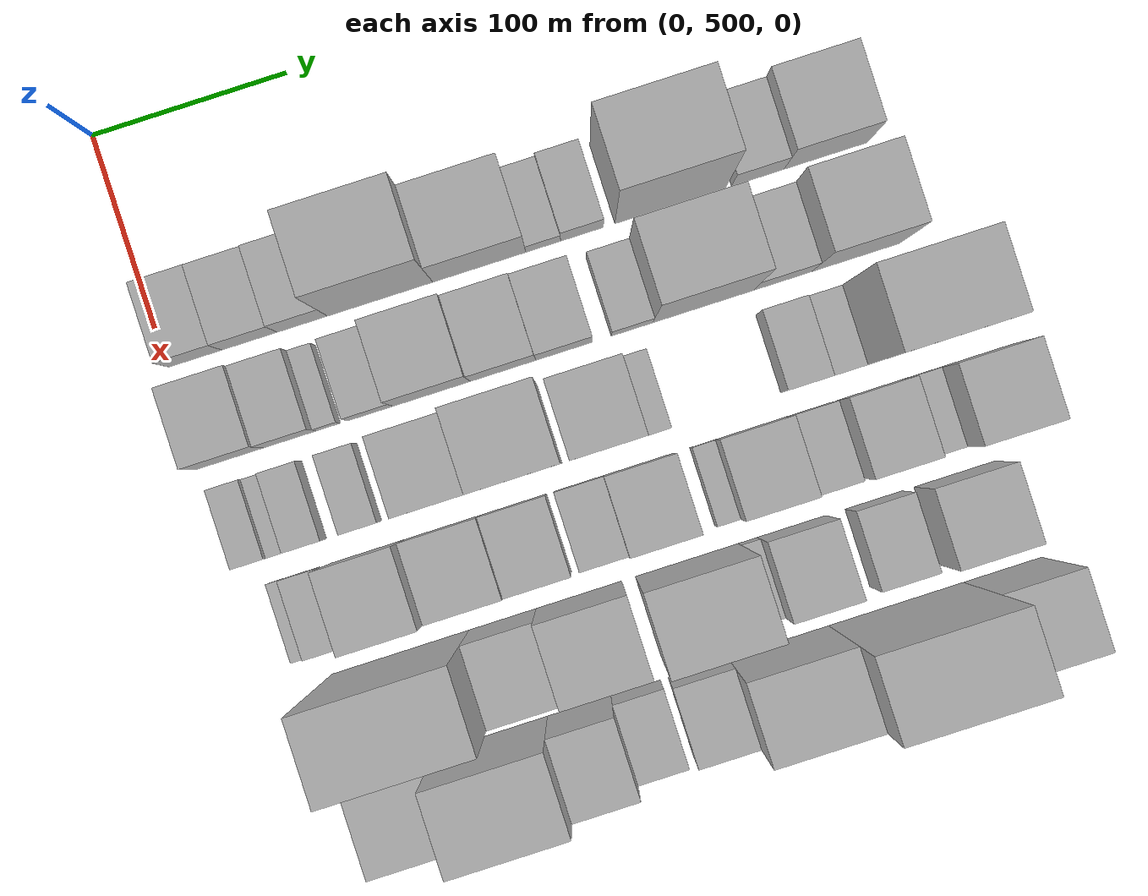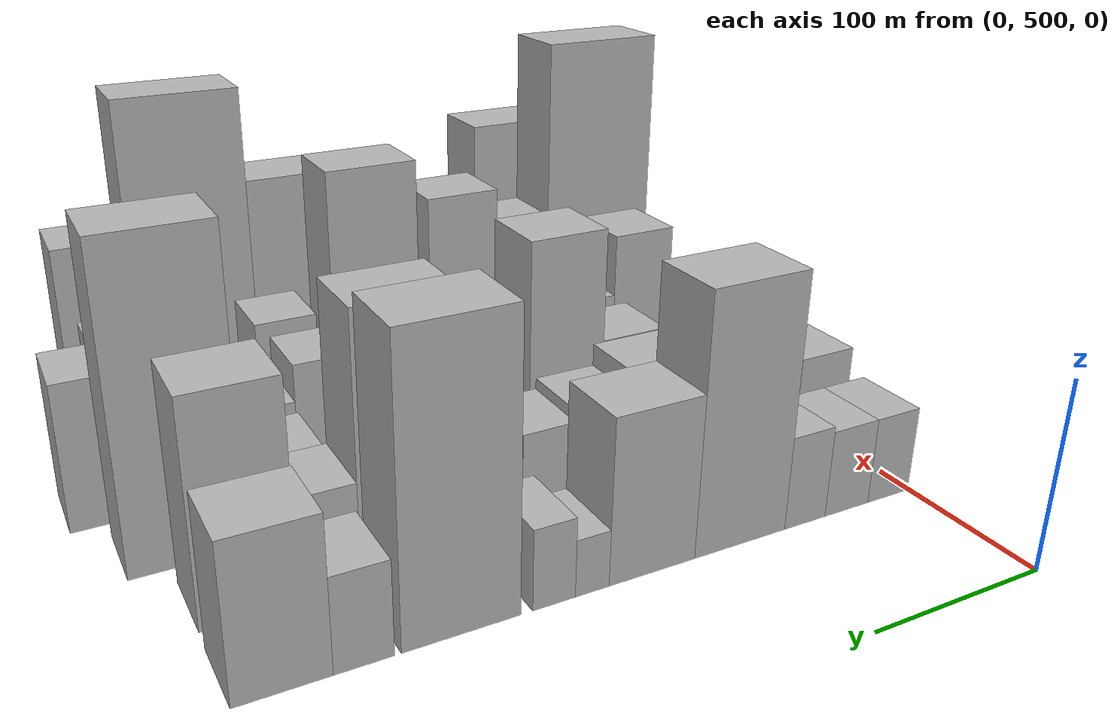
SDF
<sdf version="1.6">
 <world name="default">
  <model name="building_43">
   <static>1</static>
   <pose>100.0000 514.7516 0 0.000000 0.000000 0.000000</pose>
   <link name="link">
    <pose>0 0 24.00 0 0 0</pose>
    <collision name="collision"><geometry><box><size>40.0000 27.4832 48.0000</size></box></geometry></collision>
    <visual name="visual">
     <cast_shadows>0</cast_shadows>
     <geometry><box><size>40.0000 27.4832 48.0000</size></box></geometry>
     <material>
      <script>
       <uri>model://HANNAS_wall/materials/scripts</uri>
       <uri>model://HANNAS_wall/materials/textures</uri>
       <name>vrc/HANNAS_wall</name>
      </script>
     </material>
    </visual>
   </link>
  </model>
  <model name="building_44">
   <static>1</static>
   <pose>100.0000 542.7518 0 0.000000 0.000000 0.000000</pose>
   <link name="link">
    <pose>0 0 24.00 0 0 0</pose>
    <collision name="collision"><geometry><box><size>40.0000 28.5172 48.0000</size></box></geometry></collision>
    <visual name="visual">
     <cast_shadows>0</cast_shadows>
     <geometry><box><size>40.0000 28.5172 48.0000</size></box></geometry>
     <material>
      <script>
       <uri>model://HANNAS_wall/materials/scripts</uri>
       <uri>model://HANNAS_wall/materials/textures</uri>
       <name>vrc/HANNAS_wall</name>
      </script>
     </material>
    </visual>
   </link>
  </model>
  <model name="building_45">
   <static>1</static>
   <pose>100.0000 569.9251 0 0.000000 0.000000 0.000000</pose>
   <link name="link">
    <pose>0 0 25.50 0 0 0</pose>
    <collision name="collision"><geometry><box><size>40.0000 25.8294 51.0000</size></box></geometry></collision>
    <visual name="visual">
     <cast_shadows>0</cast_shadows>
     <geometry><box><size>40.0000 25.8294 51.0000</size></box></geometry>
     <material>
      <script>
       <uri>model://HANNAS_wall/materials/scripts</uri>
       <uri>model://HANNAS_wall/materials/textures</uri>
       <name>vrc/HANNAS_wall</name>
      </script>
     </material>
    </visual>
   </link>
  </model>
  <model name="building_46">
   <static>1</static>
   <pose>100.0000 610.0056 0 0.000000 0.000000 0.000000</pose>
   <link name="link">
    <pose>0 0 69.00 0 0 0</pose>
    <collision name="collision"><geometry><box><size>40.0000 54.3316 138.0000</size></box></geometry></collision>
    <visual name="visual">
     <cast_shadows>0</cast_shadows>
     <geometry><box><size>40.0000 54.3316 138.0000</size></box></geometry>
     <material>
      <script>
       <uri>model://HANNAS_wall/materials/scripts</uri>
       <uri>model://HANNAS_wall/materials/textures</uri>
       <name>vrc/HANNAS_wall</name>
      </script>
     </material>
    </visual>
   </link>
  </model>
  <model name="building_47">
   <static>1</static>
   <pose>100.0000 661.1012 0 0.000000 0.000000 0.000000</pose>
   <link name="link">
    <pose>0 0 43.50 0 0 0</pose>
    <collision name="collision"><geometry><box><size>40.0000 47.8596 87.0000</size></box></geometry></collision>
    <visual name="visual">
     <cast_shadows>0</cast_shadows>
     <geometry><box><size>40.0000 47.8596 87.0000</size></box></geometry>
     <material>
      <script>
       <uri>model://HANNAS_wall/materials/scripts</uri>
       <uri>model://HANNAS_wall/materials/textures</uri>
       <name>vrc/HANNAS_wall</name>
      </script>
     </material>
    </visual>
   </link>
  </model>
  <model name="building_48">
   <static>1</static>
   <pose>100.0000 693.9818 0 0.000000 0.000000 0.000000</pose>
   <link name="link">
    <pose>0 0 15.00 0 0 0</pose>
    <collision name="collision"><geometry><box><size>40.0000 17.9016 30.0000</size></box></geometry></collision>
    <visual name="visual">
     <cast_shadows>0</cast_shadows>
     <geometry><box><size>40.0000 17.9016 30.0000</size></box></geometry>
     <material>
      <script>
       <uri>model://HANNAS_wall/materials/scripts</uri>
       <uri>model://HANNAS_wall/materials/textures</uri>
       <name>vrc/HANNAS_wall</name>
      </script>
     </material>
    </visual>
   </link>
  </model>
  <model name="building_49">
   <static>1</static>
   <pose>100.0000 713.9070 0 0.000000 0.000000 0.000000</pose>
   <link name="link">
    <pose>0 0 21.00 0 0 0</pose>
    <collision name="collision"><geometry><box><size>40.0000 21.9488 42.0000</size></box></geometry></collision>
    <visual name="visual">
     <cast_shadows>0</cast_shadows>
     <geometry><box><size>40.0000 21.9488 42.0000</size></box></geometry>
     <material>
      <script>
       <uri>model://HANNAS_wall/materials/scripts</uri>
       <uri>model://HANNAS_wall/materials/textures</uri>
       <name>vrc/HANNAS_wall</name>
      </script>
     </material>
    </visual>
   </link>
  </model>
  <model name="building_50">
   <static>1</static>
   <pose>100.0000 759.4302 0 0.000000 0.000000 0.000000</pose>
   <link name="link">
    <pose>0 0 75.00 0 0 0</pose>
    <collision name="collision"><geometry><box><size>40.0000 57.0977 150.0000</size></box></geometry></collision>
    <visual name="visual">
     <cast_shadows>0</cast_shadows>
     <geometry><box><size>40.0000 57.0977 150.0000</size></box></geometry>
     <material>
      <script>
       <uri>model://HANNAS_wall/materials/scripts</uri>
       <uri>model://HANNAS_wall/materials/textures</uri>
       <name>vrc/HANNAS_wall</name>
      </script>
     </material>
    </visual>
   </link>
  </model>
  <model name="building_51">
   <static>1</static>
   <pose>100.0000 804.5569 0 0.000000 0.000000 0.000000</pose>
   <link name="link">
    <pose>0 0 24.00 0 0 0</pose>
    <collision name="collision"><geometry><box><size>40.0000 27.1556 48.0000</size></box></geometry></collision>
    <visual name="visual">
     <cast_shadows>0</cast_shadows>
     <geometry><box><size>40.0000 27.1556 48.0000</size></box></geometry>
     <material>
      <script>
       <uri>model://HANNAS_wall/materials/scripts</uri>
       <uri>model://HANNAS_wall/materials/textures</uri>
       <name>vrc/HANNAS_wall</name>
      </script>
     </material>
    </visual>
   </link>
  </model>
  <model name="building_52">
   <static>1</static>
   <pose>100.0000 839.6594 0 0.000000 0.000000 0.000000</pose>
   <link name="link">
    <pose>0 0 39.00 0 0 0</pose>
    <collision name="collision"><geometry><box><size>40.0000 43.0494 78.0000</size></box></geometry></collision>
    <visual name="visual">
     <cast_shadows>0</cast_shadows>
     <geometry><box><size>40.0000 43.0494 78.0000</size></box></geometry>
     <material>
      <script>
       <uri>model://HANNAS_wall/materials/scripts</uri>
       <uri>model://HANNAS_wall/materials/textures</uri>
       <name>vrc/HANNAS_wall</name>
      </script>
     </material>
    </visual>
   </link>
  </model>
  <model name="building_96">
   <static>1</static>
   <pose>152.0000 516.3863 0 0.000000 0.000000 0.000000</pose>
   <link name="link">
    <pose>0 0 30.00 0 0 0</pose>
    <collision name="collision"><geometry><box><size>40.0000 34.7319 60.0000</size></box></geometry></collision>
    <visual name="visual">
     <cast_shadows>0</cast_shadows>
     <geometry><box><size>40.0000 34.7319 60.0000</size></box></geometry>
     <material>
      <script>
       <uri>model://HANNAS_wall/materials/scripts</uri>
       <uri>model://HANNAS_wall/materials/textures</uri>
       <name>vrc/HANNAS_wall</name>
      </script>
     </material>
    </visual>
   </link>
  </model>
  <model name="building_97">
   <static>1</static>
   <pose>152.0000 547.3346 0 0.000000 0.000000 0.000000</pose>
   <link name="link">
    <pose>0 0 25.50 0 0 0</pose>
    <collision name="collision"><geometry><box><size>40.0000 27.1647 51.0000</size></box></geometry></collision>
    <visual name="visual">
     <cast_shadows>0</cast_shadows>
     <geometry><box><size>40.0000 27.1647 51.0000</size></box></geometry>
     <material>
      <script>
       <uri>model://HANNAS_wall/materials/scripts</uri>
       <uri>model://HANNAS_wall/materials/textures</uri>
       <name>vrc/HANNAS_wall</name>
      </script>
     </material>
    </visual>
   </link>
  </model>
  <model name="building_98">
   <static>1</static>
   <pose>152.0000 566.8733 0 0.000000 0.000000 0.000000</pose>
   <link name="link">
    <pose>0 0 13.50 0 0 0</pose>
    <collision name="collision"><geometry><box><size>40.0000 11.9128 27.0000</size></box></geometry></collision>
    <visual name="visual">
     <cast_shadows>0</cast_shadows>
     <geometry><box><size>40.0000 11.9128 27.0000</size></box></geometry>
     <material>
      <script>
       <uri>model://HANNAS_wall/materials/scripts</uri>
       <uri>model://HANNAS_wall/materials/textures</uri>
       <name>vrc/HANNAS_wall</name>
      </script>
     </material>
    </visual>
   </link>
  </model>
  <model name="building_99">
   <static>1</static>
   <pose>152.0000 588.4325 0 0.000000 0.000000 0.000000</pose>
   <link name="link">
    <pose>0 0 19.50 0 0 0</pose>
    <collision name="collision"><geometry><box><size>40.0000 23.2056 39.0000</size></box></geometry></collision>
    <visual name="visual">
     <cast_shadows>0</cast_shadows>
     <geometry><box><size>40.0000 23.2056 39.0000</size></box></geometry>
     <material>
      <script>
       <uri>model://HANNAS_wall/materials/scripts</uri>
       <uri>model://HANNAS_wall/materials/textures</uri>
       <name>vrc/HANNAS_wall</name>
      </script>
     </material>
    </visual>
   </link>
  </model>
  <model name="building_100">
   <static>1</static>
   <pose>152.0000 619.8724 0 0.000000 0.000000 0.000000</pose>
   <link name="link">
    <pose>0 0 37.50 0 0 0</pose>
    <collision name="collision"><geometry><box><size>40.0000 39.6742 75.0000</size></box></geometry></collision>
    <visual name="visual">
     <cast_shadows>0</cast_shadows>
     <geometry><box><size>40.0000 39.6742 75.0000</size></box></geometry>
     <material>
      <script>
       <uri>model://HANNAS_wall/materials/scripts</uri>
       <uri>model://HANNAS_wall/materials/textures</uri>
       <name>vrc/HANNAS_wall</name>
      </script>
     </material>
    </visual>
   </link>
  </model>
  <model name="building_101">
   <static>1</static>
   <pose>152.0000 656.6101 0 0.000000 0.000000 0.000000</pose>
   <link name="link">
    <pose>0 0 31.50 0 0 0</pose>
    <collision name="collision"><geometry><box><size>40.0000 33.8011 63.0000</size></box></geometry></collision>
    <visual name="visual">
     <cast_shadows>0</cast_shadows>
     <geometry><box><size>40.0000 33.8011 63.0000</size></box></geometry>
     <material>
      <script>
       <uri>model://HANNAS_wall/materials/scripts</uri>
       <uri>model://HANNAS_wall/materials/textures</uri>
       <name>vrc/HANNAS_wall</name>
      </script>
     </material>
    </visual>
   </link>
  </model>
  <model name="building_102">
   <static>1</static>
   <pose>152.0000 687.8854 0 0.000000 0.000000 0.000000</pose>
   <link name="link">
    <pose>0 0 28.50 0 0 0</pose>
    <collision name="collision"><geometry><box><size>40.0000 28.7497 57.0000</size></box></geometry></collision>
    <visual name="visual">
     <cast_shadows>0</cast_shadows>
     <geometry><box><size>40.0000 28.7497 57.0000</size></box></geometry>
     <material>
      <script>
       <uri>model://HANNAS_wall/materials/scripts</uri>
       <uri>model://HANNAS_wall/materials/textures</uri>
       <name>vrc/HANNAS_wall</name>
      </script>
     </material>
    </visual>
   </link>
  </model>
  <model name="building_103">
   <static>1</static>
   <pose>152.0000 722.9533 0 0.000000 0.000000 0.000000</pose>
   <link name="link">
    <pose>0 0 19.50 0 0 0</pose>
    <collision name="collision"><geometry><box><size>40.0000 21.3862 39.0000</size></box></geometry></collision>
    <visual name="visual">
     <cast_shadows>0</cast_shadows>
     <geometry><box><size>40.0000 21.3862 39.0000</size></box></geometry>
     <material>
      <script>
       <uri>model://HANNAS_wall/materials/scripts</uri>
       <uri>model://HANNAS_wall/materials/textures</uri>
       <name>vrc/HANNAS_wall</name>
      </script>
     </material>
    </visual>
   </link>
  </model>
  <model name="building_104">
   <static>1</static>
   <pose>152.0000 759.7269 0 0.000000 0.000000 0.000000</pose>
   <link name="link">
    <pose>0 0 69.00 0 0 0</pose>
    <collision name="collision"><geometry><box><size>40.0000 52.1610 138.0000</size></box></geometry></collision>
    <visual name="visual">
     <cast_shadows>0</cast_shadows>
     <geometry><box><size>40.0000 52.1610 138.0000</size></box></geometry>
     <material>
      <script>
       <uri>model://HANNAS_wall/materials/scripts</uri>
       <uri>model://HANNAS_wall/materials/textures</uri>
       <name>vrc/HANNAS_wall</name>
      </script>
     </material>
    </visual>
   </link>
  </model>
  <model name="building_105">
   <static>1</static>
   <pose>152.0000 800.6943 0 0.000000 0.000000 0.000000</pose>
   <link name="link">
    <pose>0 0 27.00 0 0 0</pose>
    <collision name="collision"><geometry><box><size>40.0000 29.7737 54.0000</size></box></geometry></collision>
    <visual name="visual">
     <cast_shadows>0</cast_shadows>
     <geometry><box><size>40.0000 29.7737 54.0000</size></box></geometry>
     <material>
      <script>
       <uri>model://HANNAS_wall/materials/scripts</uri>
       <uri>model://HANNAS_wall/materials/textures</uri>
       <name>vrc/HANNAS_wall</name>
      </script>
     </material>
    </visual>
   </link>
  </model>
  <model name="building_106">
   <static>1</static>
   <pose>152.0000 838.1845 0 0.000000 0.000000 0.000000</pose>
   <link name="link">
    <pose>0 0 57.00 0 0 0</pose>
    <collision name="collision"><geometry><box><size>40.0000 45.2067 114.0000</size></box></geometry></collision>
    <visual name="visual">
     <cast_shadows>0</cast_shadows>
     <geometry><box><size>40.0000 45.2067 114.0000</size></box></geometry>
     <material>
      <script>
       <uri>model://HANNAS_wall/materials/scripts</uri>
       <uri>model://HANNAS_wall/materials/textures</uri>
       <name>vrc/HANNAS_wall</name>
      </script>
     </material>
    </visual>
   </link>
  </model>
  <model name="building_148">
   <static>1</static>
   <pose>204.0000 511.6784 0 0.000000 0.000000 0.000000</pose>
   <link name="link">
    <pose>0 0 15.00 0 0 0</pose>
    <collision name="collision"><geometry><box><size>40.0000 16.7962 30.0000</size></box></geometry></collision>
    <visual name="visual">
     <cast_shadows>0</cast_shadows>
     <geometry><box><size>40.0000 16.7962 30.0000</size></box></geometry>
     <material>
      <script>
       <uri>model://HANNAS_wall/materials/scripts</uri>
       <uri>model://HANNAS_wall/materials/textures</uri>
       <name>vrc/HANNAS_wall</name>
      </script>
     </material>
    </visual>
   </link>
  </model>
  <model name="building_149">
   <static>1</static>
   <pose>204.0000 524.7945 0 0.000000 0.000000 0.000000</pose>
   <link name="link">
    <pose>0 0 10.50 0 0 0</pose>
    <collision name="collision"><geometry><box><size>40.0000 9.4360 21.0000</size></box></geometry></collision>
    <visual name="visual">
     <cast_shadows>0</cast_shadows>
     <geometry><box><size>40.0000 9.4360 21.0000</size></box></geometry>
     <material>
      <script>
       <uri>model://HANNAS_wall/materials/scripts</uri>
       <uri>model://HANNAS_wall/materials/textures</uri>
       <name>vrc/HANNAS_wall</name>
      </script>
     </material>
    </visual>
   </link>
  </model>
  <model name="building_150">
   <static>1</static>
   <pose>204.0000 539.2308 0 0.000000 0.000000 0.000000</pose>
   <link name="link">
    <pose>0 0 16.50 0 0 0</pose>
    <collision name="collision"><geometry><box><size>40.0000 19.4367 33.0000</size></box></geometry></collision>
    <visual name="visual">
     <cast_shadows>0</cast_shadows>
     <geometry><box><size>40.0000 19.4367 33.0000</size></box></geometry>
     <material>
      <script>
       <uri>model://HANNAS_wall/materials/scripts</uri>
       <uri>model://HANNAS_wall/materials/textures</uri>
       <name>vrc/HANNAS_wall</name>
      </script>
     </material>
    </visual>
   </link>
  </model>
  <model name="building_151">
   <static>1</static>
   <pose>204.0000 567.6677 0 0.000000 0.000000 0.000000</pose>
   <link name="link">
    <pose>0 0 16.50 0 0 0</pose>
    <collision name="collision"><geometry><box><size>40.0000 19.4371 33.0000</size></box></geometry></collision>
    <visual name="visual">
     <cast_shadows>0</cast_shadows>
     <geometry><box><size>40.0000 19.4371 33.0000</size></box></geometry>
     <material>
      <script>
       <uri>model://HANNAS_wall/materials/scripts</uri>
       <uri>model://HANNAS_wall/materials/textures</uri>
       <name>vrc/HANNAS_wall</name>
      </script>
     </material>
    </visual>
   </link>
  </model>
  <model name="building_152">
   <static>1</static>
   <pose>204.0000 606.0776 0 0.000000 0.000000 0.000000</pose>
   <link name="link">
    <pose>0 0 34.50 0 0 0</pose>
    <collision name="collision"><geometry><box><size>40.0000 39.3828 69.0000</size></box></geometry></collision>
    <visual name="visual">
     <cast_shadows>0</cast_shadows>
     <geometry><box><size>40.0000 39.3828 69.0000</size></box></geometry>
     <material>
      <script>
       <uri>model://HANNAS_wall/materials/scripts</uri>
       <uri>model://HANNAS_wall/materials/textures</uri>
       <name>vrc/HANNAS_wall</name>
      </script>
     </material>
    </visual>
   </link>
  </model>
  <model name="building_153">
   <static>1</static>
   <pose>204.0000 648.0403 0 0.000000 0.000000 0.000000</pose>
   <link name="link">
    <pose>0 0 66.00 0 0 0</pose>
    <collision name="collision"><geometry><box><size>40.0000 44.5425 132.0000</size></box></geometry></collision>
    <visual name="visual">
     <cast_shadows>0</cast_shadows>
     <geometry><box><size>40.0000 44.5425 132.0000</size></box></geometry>
     <material>
      <script>
       <uri>model://HANNAS_wall/materials/scripts</uri>
       <uri>model://HANNAS_wall/materials/textures</uri>
       <name>vrc/HANNAS_wall</name>
      </script>
     </material>
    </visual>
   </link>
  </model>
  <model name="building_154">
   <static>1</static>
   <pose>204.0000 693.6566 0 0.000000 0.000000 0.000000</pose>
   <link name="link">
    <pose>0 0 33.00 0 0 0</pose>
    <collision name="collision"><geometry><box><size>40.0000 38.6901 66.0000</size></box></geometry></collision>
    <visual name="visual">
     <cast_shadows>0</cast_shadows>
     <geometry><box><size>40.0000 38.6901 66.0000</size></box></geometry>
     <material>
      <script>
       <uri>model://HANNAS_wall/materials/scripts</uri>
       <uri>model://HANNAS_wall/materials/textures</uri>
       <name>vrc/HANNAS_wall</name>
      </script>
     </material>
    </visual>
   </link>
  </model>
  <model name="building_155">
   <static>1</static>
   <pose>204.0000 719.4248 0 0.000000 0.000000 0.000000</pose>
   <link name="link">
    <pose>0 0 13.50 0 0 0</pose>
    <collision name="collision"><geometry><box><size>40.0000 12.8463 27.0000</size></box></geometry></collision>
    <visual name="visual">
     <cast_shadows>0</cast_shadows>
     <geometry><box><size>40.0000 12.8463 27.0000</size></box></geometry>
     <material>
      <script>
       <uri>model://HANNAS_wall/materials/scripts</uri>
       <uri>model://HANNAS_wall/materials/textures</uri>
       <name>vrc/HANNAS_wall</name>
      </script>
     </material>
    </visual>
   </link>
  </model>
  <model name="building_156">
   <static>1</static>
   <pose>204.0000 794.5505 0 0.000000 0.000000 0.000000</pose>
   <link name="link">
    <pose>0 0 22.50 0 0 0</pose>
    <collision name="collision"><geometry><box><size>40.0000 23.1350 45.0000</size></box></geometry></collision>
    <visual name="visual">
     <cast_shadows>0</cast_shadows>
     <geometry><box><size>40.0000 23.1350 45.0000</size></box></geometry>
     <material>
      <script>
       <uri>model://HANNAS_wall/materials/scripts</uri>
       <uri>model://HANNAS_wall/materials/textures</uri>
       <name>vrc/HANNAS_wall</name>
      </script>
     </material>
    </visual>
   </link>
  </model>
  <model name="building_157">
   <static>1</static>
   <pose>204.0000 815.0681 0 0.000000 0.000000 0.000000</pose>
   <link name="link">
    <pose>0 0 16.50 0 0 0</pose>
    <collision name="collision"><geometry><box><size>40.0000 17.9003 33.0000</size></box></geometry></collision>
    <visual name="visual">
     <cast_shadows>0</cast_shadows>
     <geometry><box><size>40.0000 17.9003 33.0000</size></box></geometry>
     <material>
      <script>
       <uri>model://HANNAS_wall/materials/scripts</uri>
       <uri>model://HANNAS_wall/materials/textures</uri>
       <name>vrc/HANNAS_wall</name>
      </script>
     </material>
    </visual>
   </link>
  </model>
  <model name="building_158">
   <static>1</static>
   <pose>204.0000 852.4900 0 0.000000 0.000000 0.000000</pose>
   <link name="link">
    <pose>0 0 84.00 0 0 0</pose>
    <collision name="collision"><geometry><box><size>40.0000 56.9435 168.0000</size></box></geometry></collision>
    <visual name="visual">
     <cast_shadows>0</cast_shadows>
     <geometry><box><size>40.0000 56.9435 168.0000</size></box></geometry>
     <material>
      <script>
       <uri>model://HANNAS_wall/materials/scripts</uri>
       <uri>model://HANNAS_wall/materials/textures</uri>
       <name>vrc/HANNAS_wall</name>
      </script>
     </material>
    </visual>
   </link>
  </model>
  <model name="building_197">
   <static>1</static>
   <pose>256.0000 519.4459 0 0.000000 0.000000 0.000000</pose>
   <link name="link">
    <pose>0 0 9.00 0 0 0</pose>
    <collision name="collision"><geometry><box><size>40.0000 7.6952 18.0000</size></box></geometry></collision>
    <visual name="visual">
     <cast_shadows>0</cast_shadows>
     <geometry><box><size>40.0000 7.6952 18.0000</size></box></geometry>
     <material>
      <script>
       <uri>model://HANNAS_wall/materials/scripts</uri>
       <uri>model://HANNAS_wall/materials/textures</uri>
       <name>vrc/HANNAS_wall</name>
      </script>
     </material>
    </visual>
   </link>
  </model>
  <model name="building_198">
   <static>1</static>
   <pose>256.0000 532.3666 0 0.000000 0.000000 0.000000</pose>
   <link name="link">
    <pose>0 0 16.50 0 0 0</pose>
    <collision name="collision"><geometry><box><size>40.0000 18.1462 33.0000</size></box></geometry></collision>
    <visual name="visual">
     <cast_shadows>0</cast_shadows>
     <geometry><box><size>40.0000 18.1462 33.0000</size></box></geometry>
     <material>
      <script>
       <uri>model://HANNAS_wall/materials/scripts</uri>
       <uri>model://HANNAS_wall/materials/textures</uri>
       <name>vrc/HANNAS_wall</name>
      </script>
     </material>
    </visual>
   </link>
  </model>
  <model name="building_199">
   <static>1</static>
   <pose>256.0000 566.7568 0 0.000000 0.000000 0.000000</pose>
   <link name="link">
    <pose>0 0 52.50 0 0 0</pose>
    <collision name="collision"><geometry><box><size>40.0000 38.6341 105.0000</size></box></geometry></collision>
    <visual name="visual">
     <cast_shadows>0</cast_shadows>
     <geometry><box><size>40.0000 38.6341 105.0000</size></box></geometry>
     <material>
      <script>
       <uri>model://HANNAS_wall/materials/scripts</uri>
       <uri>model://HANNAS_wall/materials/textures</uri>
       <name>vrc/HANNAS_wall</name>
      </script>
     </material>
    </visual>
   </link>
  </model>
  <model name="building_200">
   <static>1</static>
   <pose>256.0000 605.4002 0 0.000000 0.000000 0.000000</pose>
   <link name="link">
    <pose>0 0 34.50 0 0 0</pose>
    <collision name="collision"><geometry><box><size>40.0000 38.6527 69.0000</size></box></geometry></collision>
    <visual name="visual">
     <cast_shadows>0</cast_shadows>
     <geometry><box><size>40.0000 38.6527 69.0000</size></box></geometry>
     <material>
      <script>
       <uri>model://HANNAS_wall/materials/scripts</uri>
       <uri>model://HANNAS_wall/materials/textures</uri>
       <name>vrc/HANNAS_wall</name>
      </script>
     </material>
    </visual>
   </link>
  </model>
  <model name="building_201">
   <static>1</static>
   <pose>256.0000 641.5519 0 0.000000 0.000000 0.000000</pose>
   <link name="link">
    <pose>0 0 30.00 0 0 0</pose>
    <collision name="collision"><geometry><box><size>40.0000 33.6506 60.0000</size></box></geometry></collision>
    <visual name="visual">
     <cast_shadows>0</cast_shadows>
     <geometry><box><size>40.0000 33.6506 60.0000</size></box></geometry>
     <material>
      <script>
       <uri>model://HANNAS_wall/materials/scripts</uri>
       <uri>model://HANNAS_wall/materials/textures</uri>
       <name>vrc/HANNAS_wall</name>
      </script>
     </material>
    </visual>
   </link>
  </model>
  <model name="building_202">
   <static>1</static>
   <pose>256.0000 674.8203 0 0.000000 0.000000 0.000000</pose>
   <link name="link">
    <pose>0 0 21.00 0 0 0</pose>
    <collision name="collision"><geometry><box><size>40.0000 24.8862 42.0000</size></box></geometry></collision>
    <visual name="visual">
     <cast_shadows>0</cast_shadows>
     <geometry><box><size>40.0000 24.8862 42.0000</size></box></geometry>
     <material>
      <script>
       <uri>model://HANNAS_wall/materials/scripts</uri>
       <uri>model://HANNAS_wall/materials/textures</uri>
       <name>vrc/HANNAS_wall</name>
      </script>
     </material>
    </visual>
   </link>
  </model>
  <model name="building_203">
   <static>1</static>
   <pose>256.0000 705.2058 0 0.000000 0.000000 0.000000</pose>
   <link name="link">
    <pose>0 0 31.50 0 0 0</pose>
    <collision name="collision"><geometry><box><size>40.0000 35.8848 63.0000</size></box></geometry></collision>
    <visual name="visual">
     <cast_shadows>0</cast_shadows>
     <geometry><box><size>40.0000 35.8848 63.0000</size></box></geometry>
     <material>
      <script>
       <uri>model://HANNAS_wall/materials/scripts</uri>
       <uri>model://HANNAS_wall/materials/textures</uri>
       <name>vrc/HANNAS_wall</name>
      </script>
     </material>
    </visual>
   </link>
  </model>
  <model name="building_204">
   <static>1</static>
   <pose>256.0000 738.0311 0 0.000000 0.000000 0.000000</pose>
   <link name="link">
    <pose>0 0 13.50 0 0 0</pose>
    <collision name="collision"><geometry><box><size>40.0000 11.7659 27.0000</size></box></geometry></collision>
    <visual name="visual">
     <cast_shadows>0</cast_shadows>
     <geometry><box><size>40.0000 11.7659 27.0000</size></box></geometry>
     <material>
      <script>
       <uri>model://HANNAS_wall/materials/scripts</uri>
       <uri>model://HANNAS_wall/materials/textures</uri>
       <name>vrc/HANNAS_wall</name>
      </script>
     </material>
    </visual>
   </link>
  </model>
  <model name="building_205">
   <static>1</static>
   <pose>256.0000 762.3886 0 0.000000 0.000000 0.000000</pose>
   <link name="link">
    <pose>0 0 33.00 0 0 0</pose>
    <collision name="collision"><geometry><box><size>40.0000 36.9491 66.0000</size></box></geometry></collision>
    <visual name="visual">
     <cast_shadows>0</cast_shadows>
     <geometry><box><size>40.0000 36.9491 66.0000</size></box></geometry>
     <material>
      <script>
       <uri>model://HANNAS_wall/materials/scripts</uri>
       <uri>model://HANNAS_wall/materials/textures</uri>
       <name>vrc/HANNAS_wall</name>
      </script>
     </material>
    </visual>
   </link>
  </model>
  <model name="building_206">
   <static>1</static>
   <pose>256.0000 792.6477 0 0.000000 0.000000 0.000000</pose>
   <link name="link">
    <pose>0 0 22.50 0 0 0</pose>
    <collision name="collision"><geometry><box><size>40.0000 23.5691 45.0000</size></box></geometry></collision>
    <visual name="visual">
     <cast_shadows>0</cast_shadows>
     <geometry><box><size>40.0000 23.5691 45.0000</size></box></geometry>
     <material>
      <script>
       <uri>model://HANNAS_wall/materials/scripts</uri>
       <uri>model://HANNAS_wall/materials/textures</uri>
       <name>vrc/HANNAS_wall</name>
      </script>
     </material>
    </visual>
   </link>
  </model>
  <model name="building_207">
   <static>1</static>
   <pose>256.0000 824.4846 0 0.000000 0.000000 0.000000</pose>
   <link name="link">
    <pose>0 0 31.50 0 0 0</pose>
    <collision name="collision"><geometry><box><size>40.0000 34.1048 63.0000</size></box></geometry></collision>
    <visual name="visual">
     <cast_shadows>0</cast_shadows>
     <geometry><box><size>40.0000 34.1048 63.0000</size></box></geometry>
     <material>
      <script>
       <uri>model://HANNAS_wall/materials/scripts</uri>
       <uri>model://HANNAS_wall/materials/textures</uri>
       <name>vrc/HANNAS_wall</name>
      </script>
     </material>
    </visual>
   </link>
  </model>
  <model name="building_208">
   <static>1</static>
   <pose>256.0000 849.6685 0 0.000000 0.000000 0.000000</pose>
   <link name="link">
    <pose>0 0 15.00 0 0 0</pose>
    <collision name="collision"><geometry><box><size>40.0000 16.2631 30.0000</size></box></geometry></collision>
    <visual name="visual">
     <cast_shadows>0</cast_shadows>
     <geometry><box><size>40.0000 16.2631 30.0000</size></box></geometry>
     <material>
      <script>
       <uri>model://HANNAS_wall/materials/scripts</uri>
       <uri>model://HANNAS_wall/materials/textures</uri>
       <name>vrc/HANNAS_wall</name>
      </script>
     </material>
    </visual>
   </link>
  </model>
  <model name="building_209">
   <static>1</static>
   <pose>256.0000 878.2918 0 0.000000 0.000000 0.000000</pose>
   <link name="link">
    <pose>0 0 40.50 0 0 0</pose>
    <collision name="collision"><geometry><box><size>40.0000 40.9834 81.0000</size></box></geometry></collision>
    <visual name="visual">
     <cast_shadows>0</cast_shadows>
     <geometry><box><size>40.0000 40.9834 81.0000</size></box></geometry>
     <material>
      <script>
       <uri>model://HANNAS_wall/materials/scripts</uri>
       <uri>model://HANNAS_wall/materials/textures</uri>
       <name>vrc/HANNAS_wall</name>
      </script>
     </material>
    </visual>
   </link>
  </model>
  <model name="building_254">
   <static>1</static>
   <pose>308.0000 566.4680 0 0.000000 0.000000 0.000000</pose>
   <link name="link">
    <pose>0 0 103.50 0 0 0</pose>
    <collision name="collision"><geometry><box><size>40.0000 70.6920 207.0000</size></box></geometry></collision>
    <visual name="visual">
     <cast_shadows>0</cast_shadows>
     <geometry><box><size>40.0000 70.6920 207.0000</size></box></geometry>
     <material>
      <script>
       <uri>model://HANNAS_wall/materials/scripts</uri>
       <uri>model://HANNAS_wall/materials/textures</uri>
       <name>vrc/HANNAS_wall</name>
      </script>
     </material>
    </visual>
   </link>
  </model>
  <model name="building_255">
   <static>1</static>
   <pose>308.0000 619.0800 0 0.000000 0.000000 0.000000</pose>
   <link name="link">
    <pose>0 0 52.50 0 0 0</pose>
    <collision name="collision"><geometry><box><size>40.0000 34.5319 105.0000</size></box></geometry></collision>
    <visual name="visual">
     <cast_shadows>0</cast_shadows>
     <geometry><box><size>40.0000 34.5319 105.0000</size></box></geometry>
     <material>
      <script>
       <uri>model://HANNAS_wall/materials/scripts</uri>
       <uri>model://HANNAS_wall/materials/textures</uri>
       <name>vrc/HANNAS_wall</name>
      </script>
     </material>
    </visual>
   </link>
  </model>
  <model name="building_256">
   <static>1</static>
   <pose>308.0000 658.3694 0 0.000000 0.000000 0.000000</pose>
   <link name="link">
    <pose>0 0 63.00 0 0 0</pose>
    <collision name="collision"><geometry><box><size>40.0000 44.0469 126.0000</size></box></geometry></collision>
    <visual name="visual">
     <cast_shadows>0</cast_shadows>
     <geometry><box><size>40.0000 44.0469 126.0000</size></box></geometry>
     <material>
      <script>
       <uri>model://HANNAS_wall/materials/scripts</uri>
       <uri>model://HANNAS_wall/materials/textures</uri>
       <name>vrc/HANNAS_wall</name>
      </script>
     </material>
    </visual>
   </link>
  </model>
  <model name="building_257">
   <static>1</static>
   <pose>308.0000 713.9349 0 0.000000 0.000000 0.000000</pose>
   <link name="link">
    <pose>0 0 75.00 0 0 0</pose>
    <collision name="collision"><geometry><box><size>40.0000 53.0840 150.0000</size></box></geometry></collision>
    <visual name="visual">
     <cast_shadows>0</cast_shadows>
     <geometry><box><size>40.0000 53.0840 150.0000</size></box></geometry>
     <material>
      <script>
       <uri>model://HANNAS_wall/materials/scripts</uri>
       <uri>model://HANNAS_wall/materials/textures</uri>
       <name>vrc/HANNAS_wall</name>
      </script>
     </material>
    </visual>
   </link>
  </model>
  <model name="building_258">
   <static>1</static>
   <pose>308.0000 745.3402 0 0.000000 0.000000 0.000000</pose>
   <link name="link">
    <pose>0 0 12.00 0 0 0</pose>
    <collision name="collision"><geometry><box><size>40.0000 9.7267 24.0000</size></box></geometry></collision>
    <visual name="visual">
     <cast_shadows>0</cast_shadows>
     <geometry><box><size>40.0000 9.7267 24.0000</size></box></geometry>
     <material>
      <script>
       <uri>model://HANNAS_wall/materials/scripts</uri>
       <uri>model://HANNAS_wall/materials/textures</uri>
       <name>vrc/HANNAS_wall</name>
      </script>
     </material>
    </visual>
   </link>
  </model>
  <model name="building_259">
   <static>1</static>
   <pose>308.0000 767.8549 0 0.000000 0.000000 0.000000</pose>
   <link name="link">
    <pose>0 0 34.50 0 0 0</pose>
    <collision name="collision"><geometry><box><size>40.0000 35.3026 69.0000</size></box></geometry></collision>
    <visual name="visual">
     <cast_shadows>0</cast_shadows>
     <geometry><box><size>40.0000 35.3026 69.0000</size></box></geometry>
     <material>
      <script>
       <uri>model://HANNAS_wall/materials/scripts</uri>
       <uri>model://HANNAS_wall/materials/textures</uri>
       <name>vrc/HANNAS_wall</name>
      </script>
     </material>
    </visual>
   </link>
  </model>
  <model name="building_260">
   <static>1</static>
   <pose>308.0000 810.2487 0 0.000000 0.000000 0.000000</pose>
   <link name="link">
    <pose>0 0 25.50 0 0 0</pose>
    <collision name="collision"><geometry><box><size>40.0000 29.4850 51.0000</size></box></geometry></collision>
    <visual name="visual">
     <cast_shadows>0</cast_shadows>
     <geometry><box><size>40.0000 29.4850 51.0000</size></box></geometry>
     <material>
      <script>
       <uri>model://HANNAS_wall/materials/scripts</uri>
       <uri>model://HANNAS_wall/materials/textures</uri>
       <name>vrc/HANNAS_wall</name>
      </script>
     </material>
    </visual>
   </link>
  </model>
  <model name="building_261">
   <static>1</static>
   <pose>308.0000 851.6466 0 0.000000 0.000000 0.000000</pose>
   <link name="link">
    <pose>0 0 36.00 0 0 0</pose>
    <collision name="collision"><geometry><box><size>40.0000 41.3108 72.0000</size></box></geometry></collision>
    <visual name="visual">
     <cast_shadows>0</cast_shadows>
     <geometry><box><size>40.0000 41.3108 72.0000</size></box></geometry>
     <material>
      <script>
       <uri>model://HANNAS_wall/materials/scripts</uri>
       <uri>model://HANNAS_wall/materials/textures</uri>
       <name>vrc/HANNAS_wall</name>
      </script>
     </material>
    </visual>
   </link>
  </model>
  <model name="building_300">
   <static>1</static>
   <pose>360.0000 546.6849 0 0.000000 0.000000 0.000000</pose>
   <link name="link">
    <pose>0 0 37.50 0 0 0</pose>
    <collision name="collision"><geometry><box><size>40.0000 41.8609 75.0000</size></box></geometry></collision>
    <visual name="visual">
     <cast_shadows>0</cast_shadows>
     <geometry><box><size>40.0000 41.8609 75.0000</size></box></geometry>
     <material>
      <script>
       <uri>model://HANNAS_wall/materials/scripts</uri>
       <uri>model://HANNAS_wall/materials/textures</uri>
       <name>vrc/HANNAS_wall</name>
      </script>
     </material>
    </visual>
   </link>
  </model>
  <model name="building_301">
   <static>1</static>
   <pose>360.0000 596.4909 0 0.000000 0.000000 0.000000</pose>
   <link name="link">
    <pose>0 0 75.00 0 0 0</pose>
    <collision name="collision"><geometry><box><size>40.0000 57.7511 150.0000</size></box></geometry></collision>
    <visual name="visual">
     <cast_shadows>0</cast_shadows>
     <geometry><box><size>40.0000 57.7511 150.0000</size></box></geometry>
     <material>
      <script>
       <uri>model://HANNAS_wall/materials/scripts</uri>
       <uri>model://HANNAS_wall/materials/textures</uri>
       <name>vrc/HANNAS_wall</name>
      </script>
     </material>
    </visual>
   </link>
  </model>
  <model name="building_302">
   <static>1</static>
   <pose>360.0000 641.7426 0 0.000000 0.000000 0.000000</pose>
   <link name="link">
    <pose>0 0 51.00 0 0 0</pose>
    <collision name="collision"><geometry><box><size>40.0000 32.7524 102.0000</size></box></geometry></collision>
    <visual name="visual">
     <cast_shadows>0</cast_shadows>
     <geometry><box><size>40.0000 32.7524 102.0000</size></box></geometry>
     <material>
      <script>
       <uri>model://HANNAS_wall/materials/scripts</uri>
       <uri>model://HANNAS_wall/materials/textures</uri>
       <name>vrc/HANNAS_wall</name>
      </script>
     </material>
    </visual>
   </link>
  </model>
  <model name="building_303">
   <static>1</static>
   <pose>360.0000 670.8600 0 0.000000 0.000000 0.000000</pose>
   <link name="link">
    <pose>0 0 24.00 0 0 0</pose>
    <collision name="collision"><geometry><box><size>40.0000 25.4824 48.0000</size></box></geometry></collision>
    <visual name="visual">
     <cast_shadows>0</cast_shadows>
     <geometry><box><size>40.0000 25.4824 48.0000</size></box></geometry>
     <material>
      <script>
       <uri>model://HANNAS_wall/materials/scripts</uri>
       <uri>model://HANNAS_wall/materials/textures</uri>
       <name>vrc/HANNAS_wall</name>
      </script>
     </material>
    </visual>
   </link>
  </model>
  <model name="building_304">
   <static>1</static>
   <pose>360.0000 702.9839 0 0.000000 0.000000 0.000000</pose>
   <link name="link">
    <pose>0 0 30.00 0 0 0</pose>
    <collision name="collision"><geometry><box><size>40.0000 30.7653 60.0000</size></box></geometry></collision>
    <visual name="visual">
     <cast_shadows>0</cast_shadows>
     <geometry><box><size>40.0000 30.7653 60.0000</size></box></geometry>
     <material>
      <script>
       <uri>model://HANNAS_wall/materials/scripts</uri>
       <uri>model://HANNAS_wall/materials/textures</uri>
       <name>vrc/HANNAS_wall</name>
      </script>
     </material>
    </visual>
   </link>
  </model>
  <model name="building_305">
   <static>1</static>
   <pose>360.0000 744.4009 0 0.000000 0.000000 0.000000</pose>
   <link name="link">
    <pose>0 0 67.50 0 0 0</pose>
    <collision name="collision"><geometry><box><size>40.0000 52.0687 135.0000</size></box></geometry></collision>
    <visual name="visual">
     <cast_shadows>0</cast_shadows>
     <geometry><box><size>40.0000 52.0687 135.0000</size></box></geometry>
     <material>
      <script>
       <uri>model://HANNAS_wall/materials/scripts</uri>
       <uri>model://HANNAS_wall/materials/textures</uri>
       <name>vrc/HANNAS_wall</name>
      </script>
     </material>
    </visual>
   </link>
  </model>
  <model name="building_306">
   <static>1</static>
   <pose>360.0000 805.1766 0 0.000000 0.000000 0.000000</pose>
   <link name="link">
    <pose>0 0 94.50 0 0 0</pose>
    <collision name="collision"><geometry><box><size>40.0000 69.4826 189.0000</size></box></geometry></collision>
    <visual name="visual">
     <cast_shadows>0</cast_shadows>
     <geometry><box><size>40.0000 69.4826 189.0000</size></box></geometry>
     <material>
      <script>
       <uri>model://HANNAS_wall/materials/scripts</uri>
       <uri>model://HANNAS_wall/materials/textures</uri>
       <name>vrc/HANNAS_wall</name>
      </script>
     </material>
    </visual>
   </link>
  </model>
  <model name="building_307">
   <static>1</static>
   <pose>360.0000 860.0478 0 0.000000 0.000000 0.000000</pose>
   <link name="link">
    <pose>0 0 55.50 0 0 0</pose>
    <collision name="collision"><geometry><box><size>40.0000 40.2598 111.0000</size></box></geometry></collision>
    <visual name="visual">
     <cast_shadows>0</cast_shadows>
     <geometry><box><size>40.0000 40.2598 111.0000</size></box></geometry>
     <material>
      <script>
       <uri>model://HANNAS_wall/materials/scripts</uri>
       <uri>model://HANNAS_wall/materials/textures</uri>
       <name>vrc/HANNAS_wall</name>
      </script>
     </material>
    </visual>
   </link>
  </model>
 </world>
</sdf>
